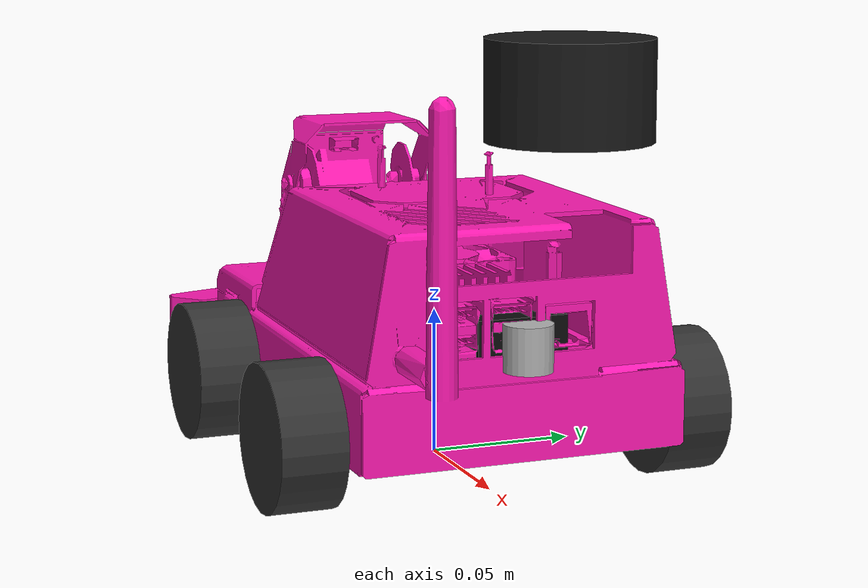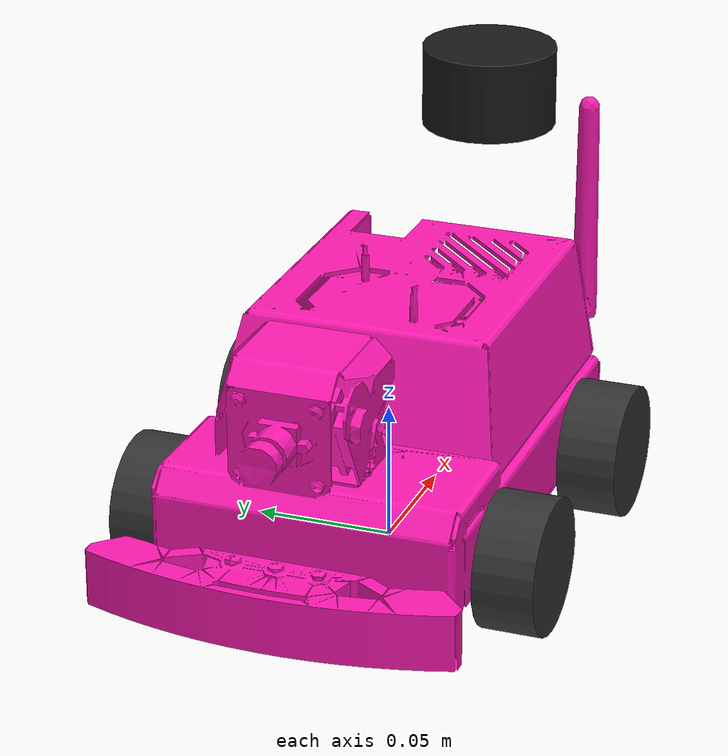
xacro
<?xml version="1.0"?>
<robot xmlns:xacro="http://www.ros.org/wiki/xacro" name="yahboom_microros">

  <!-- Mõõtmed (STEP failist mõõdetud, meetrites)                   -->
  <xacro:property name="wheel_radius"    value="0.024"/>
  <xacro:property name="wheel_width"     value="0.0215"/>
  <xacro:property name="wheel_mass"      value="0.05"/>
  <xacro:property name="track_width"     value="0.1315"/>   <!-- vasak-parem rattakeskuste vahe -->
  <xacro:property name="wheelbase"       value="0.095"/>    <!-- ees-taga rattakeskuste vahe -->

  <xacro:property name="body_length"     value="0.163"/>
  <xacro:property name="body_width"      value="0.108"/>
  <xacro:property name="body_height"     value="0.050"/>
  <xacro:property name="body_mass"       value="1.5"/>

  <!-- Mesh offset: nihutab STEP-mesh nii et base_link on rattatelgede kõrgusel -->
  <xacro:property name="mesh_offset_z"   value="0.0212"/>

  <!-- Lidar (MS200) -->
  <xacro:property name="lidar_x"         value="0.108"/>
  <xacro:property name="lidar_z"         value="0.112"/>

  <!-- Kaamera -->
  <xacro:property name="camera_x"        value="0.069"/>
  <xacro:property name="camera_z"        value="0.031"/>

  <!-- Gazebo pluginate laadimine (eraldi fail) -->
  <xacro:arg name="use_sim" default="false"/>
  <xacro:include filename="$(find yahboom_description)/urdf/gazebo_plugins.xacro"/>

  <!-- Inertsia makrod                                              -->
  <xacro:macro name="box_inertia" params="m x y z">
    <inertial>
      <mass value="${m}"/>
      <inertia ixx="${m*(y*y+z*z)/12}" ixy="0" ixz="0"
               iyy="${m*(x*x+z*z)/12}" iyz="0"
               izz="${m*(x*x+y*y)/12}"/>
    </inertial>
  </xacro:macro>

  <xacro:macro name="cylinder_inertia" params="m r l">
    <inertial>
      <mass value="${m}"/>
      <inertia ixx="${m*(3*r*r+l*l)/12}" ixy="0" ixz="0"
               iyy="${m*(3*r*r+l*l)/12}" iyz="0"
               izz="${m*r*r/2}"/>
    </inertial>
  </xacro:macro>

  <!-- Ratta makro                                                  -->
  <xacro:macro name="wheel" params="name x y">
    <link name="${name}_link">
      <visual>
        <geometry>
          <cylinder radius="${wheel_radius}" length="${wheel_width}"/>
        </geometry>
        <material name="dark_grey">
          <color rgba="0.2 0.2 0.2 1.0"/>
        </material>
      </visual>
      <collision>
        <geometry>
          <cylinder radius="${wheel_radius}" length="${wheel_width}"/>
        </geometry>
      </collision>
      <xacro:cylinder_inertia m="${wheel_mass}" r="${wheel_radius}" l="${wheel_width}"/>
    </link>

    <joint name="${name}_joint" type="continuous">
      <parent link="base_link"/>
      <child link="${name}_link"/>
      <origin xyz="${x} ${y} 0" rpy="${-pi/2} 0 0"/>
      <axis xyz="0 0 1"/>
      <dynamics damping="0.01" friction="0.1"/>
    </joint>

    <gazebo reference="${name}_link">
      <mu1>1.5</mu1>
      <mu2>1.5</mu2>
      <kp>1e6</kp>
      <kd>100</kd>
      <material>Gazebo/DarkGrey</material>
    </gazebo>
  </xacro:macro>

  <!-- base_footprint (maapinnal)                                   -->
  <link name="base_footprint"/>

  <joint name="base_footprint_joint" type="fixed">
    <parent link="base_footprint"/>
    <child link="base_link"/>
    <origin xyz="0 0 ${wheel_radius}"/>
  </joint>

  <!-- base_link (roboti kere)                                      -->
  <link name="base_link">
    <visual>
      <origin xyz="0 0 ${mesh_offset_z}" rpy="0 0 0"/>
      <geometry>
        <mesh filename="package://yahboom_description/meshes/base_link_visual.stl"/>
      </geometry>
      <material name="robot_pink">
        <color rgba="1.0 0.1 0.7 1.0"/>
      </material>
    </visual>
    <collision>
      <origin xyz="0 0 ${mesh_offset_z}" rpy="0 0 0"/>
      <geometry>
        <mesh filename="package://yahboom_description/meshes/base_link_collision.stl"/>
      </geometry>
    </collision>
    <xacro:box_inertia m="${body_mass}" x="${body_length}" y="${body_width}" z="${body_height}"/>
  </link>

  <gazebo reference="base_link">
    <material>Gazebo/Purple</material>
  </gazebo>

  <!-- Rattad (4WD skid-steer)                                     -->
  <xacro:wheel name="front_left_wheel"  x="${wheelbase/2}"  y="${track_width/2}"/>
  <xacro:wheel name="front_right_wheel" x="${wheelbase/2}"  y="${-track_width/2}"/>
  <xacro:wheel name="rear_left_wheel"   x="${-wheelbase/2}" y="${track_width/2}"/>
  <xacro:wheel name="rear_right_wheel"  x="${-wheelbase/2}" y="${-track_width/2}"/>

  <!-- Lidar (MS200 2D laserskanner)                                -->
  <link name="laser_link">
    <visual>
      <geometry>
        <cylinder radius="0.025" length="0.030"/>
      </geometry>
      <material name="lidar_black">
        <color rgba="0.1 0.1 0.1 1.0"/>
      </material>
    </visual>
    <collision>
      <geometry>
        <cylinder radius="0.025" length="0.030"/>
      </geometry>
    </collision>
    <xacro:cylinder_inertia m="0.1" r="0.025" l="0.030"/>
  </link>

  <joint name="laser_joint" type="fixed">
    <parent link="base_link"/>
    <child link="laser_link"/>
    <origin xyz="${lidar_x} 0 ${lidar_z}" rpy="0 0 0"/>
  </joint>

  <!-- Kaamera (2MP USB)                                            -->
  <link name="camera_link">
    <visual>
      <geometry>
        <box size="0.015 0.030 0.015"/>
      </geometry>
      <material name="camera_black">
        <color rgba="0.05 0.05 0.05 1.0"/>
      </material>
    </visual>
    <collision>
      <geometry>
        <box size="0.015 0.030 0.015"/>
      </geometry>
    </collision>
    <xacro:box_inertia m="0.02" x="0.015" y="0.030" z="0.015"/>
  </link>

  <joint name="camera_joint" type="fixed">
    <parent link="base_link"/>
    <child link="camera_link"/>
    <origin xyz="${camera_x} 0 ${camera_z}" rpy="0 0 0"/>
  </joint>

  <link name="camera_optical_link"/>
  <joint name="camera_optical_joint" type="fixed">
    <parent link="camera_link"/>
    <child link="camera_optical_link"/>
    <origin xyz="0 0 0" rpy="${-pi/2} 0 ${-pi/2}"/>
  </joint>

  <!-- IMU (kiirendusandur + gyroskoop)                             -->
  <link name="imu_link">
    <visual>
      <geometry>
        <box size="0.010 0.010 0.003"/>
      </geometry>
      <material name="imu_green">
        <color rgba="0.0 0.6 0.0 1.0"/>
      </material>
    </visual>
    <xacro:box_inertia m="0.01" x="0.010" y="0.010" z="0.003"/>
  </link>

  <joint name="imu_joint" type="fixed">
    <parent link="base_link"/>
    <child link="imu_link"/>
    <origin xyz="0 0 0.01" rpy="0 0 0"/>
  </joint>

<link name="sonar_link">
  <visual>
    <geometry>
      <cylinder radius="0.008" length="0.015"/>
    </geometry>
    <material name="sonar_silver">
      <color rgba="0.7 0.7 0.7 1.0"/>
    </material>
  </visual>

  <collision>
    <geometry>
      <cylinder radius="0.008" length="0.015"/>
    </geometry>
  </collision>

  <xacro:cylinder_inertia m="0.01" r="0.008" l="0.015"/>
</link>

<joint name="sonar_joint" type="fixed">
  <parent link="base_link"/>
  <child link="sonar_link"/>
  <origin xyz="0.08 0 0.03" rpy="0 0 0"/>
</joint>

</robot>
